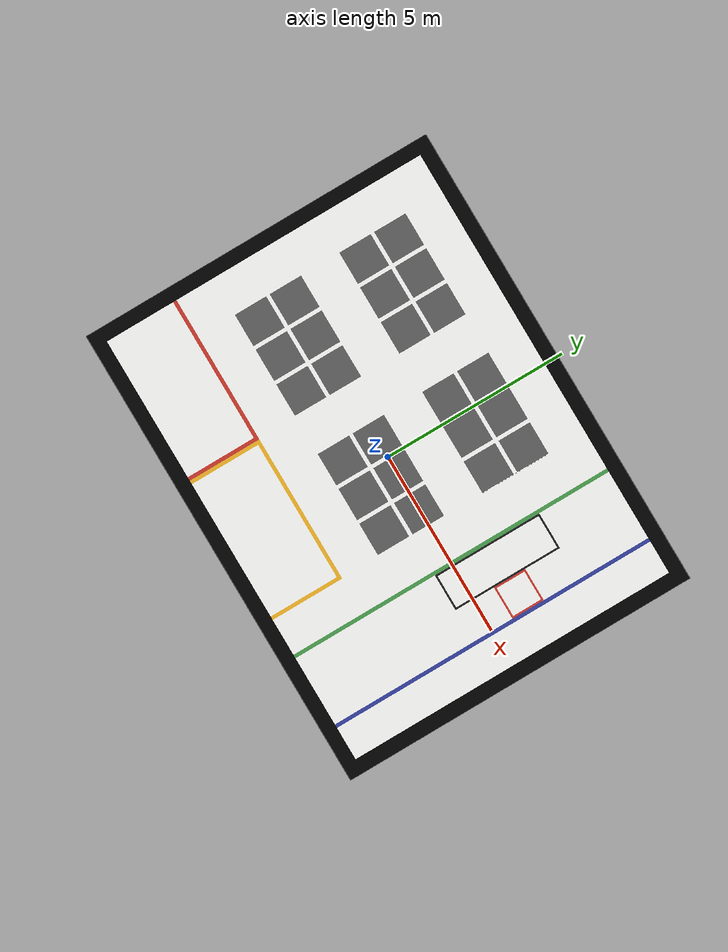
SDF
<sdf version='1.4'>
  <world name='default'>
    <light name='sun' type='directional'>
      <cast_shadows>1</cast_shadows>
      <pose>0 0 10 0 -0 0</pose>
      <diffuse>0.8 0.8 0.8 1</diffuse>
      <specular>0.2 0.2 0.2 1</specular>
      <attenuation>
        <range>1000</range>
        <constant>0.9</constant>
        <linear>0.01</linear>
        <quadratic>0.001</quadratic>
      </attenuation>
      <direction>0.5 0.1 -0.9</direction>
    </light>
    <scene>
      <ambient>0.4 0.4 0.4 1</ambient>
      <background>0.7 0.7 0.7 1</background>
      <shadows>1</shadows>
    </scene>
    <physics type='ode'>
      <max_step_size>0.01</max_step_size>
      <real_time_factor>1</real_time_factor>
      <real_time_update_rate>100</real_time_update_rate>
      <gravity>0 0 -9.8</gravity>
    </physics>
    <model name="warehouse">
    <static>true</static>
    <link name="link">
      <collision name="collision">
        <geometry>
          <mesh>
            <uri>model://turtle_warehouse/meshes/area_warehouse.dae</uri>
          </mesh>
        </geometry>
      </collision>
      <visual name="visual">
        <geometry>
          <mesh>
            <uri>model://turtle_warehouse/meshes/area_warehouse.dae</uri>
          </mesh>
        </geometry>
      </visual>
    </link>
  </model>
  </world>
</sdf>
